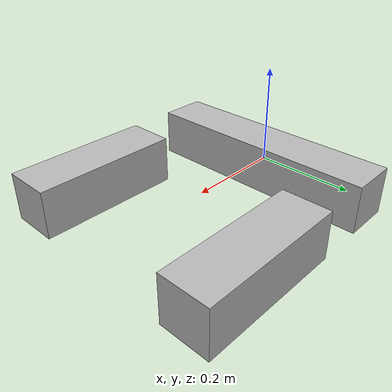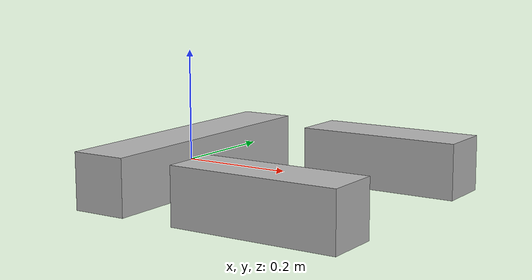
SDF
<?xml version="1.0" ?>
<sdf version="1.4">
    <model name="gripper">
        <link name="palm">
            <gravity>false</gravity>
            <inertial>
                <mass>0.01</mass>
            </inertial>
            <visual name='palm_vis'>
                <geometry>
                    <box>
                        <size>0.1 0.5 0.1</size>
                    </box>
                </geometry>
            </visual>

            <collision name='palm_col'>
                <geometry>
                    <box>
                        <size>0.1 0.5 0.1</size>
                    </box>
                </geometry>
            </collision>
        </link>

        <link name="left_finger">
            <gravity>false</gravity>
            <inertial>
                <mass>1</mass>
            </inertial>

            <pose>0.3 -0.2 0 0 0 0</pose>

            <visual name='left_finger_vis'>
                <geometry>
                    <box>
                        <size>0.3 0.1 0.1</size>
                    </box>
                </geometry>
            </visual>

            <collision name='left_finger_col'>
                <geometry>
                    <box>
                        <size>0.3 0.1 0.1</size>
                    </box>
                </geometry>
            </collision>
        </link>

        <link name="right_finger">
            <gravity>false</gravity>
            <inertial>
                <mass>1</mass>
            </inertial>

            <pose>0.3 0.2 0 0 0 0</pose>

            <visual name='right_finger_vis'>
                <geometry>
                    <box>
                        <size>0.3 0.1 0.1</size>
                    </box>
                </geometry>
            </visual>

            <collision name='right_finger_col'>
                <geometry>
                    <box>
                        <size>0.3 0.1 0.1</size>
                    </box>
                </geometry>
            </collision>
        </link>

        <joint name="l_finger_palm" type="prismatic">
            <child>left_finger</child>
            <parent>palm</parent>
            <axis>
                <limit>
                    <lower>-0.5</lower>
                    <upper>0.5</upper>
                </limit>
                <xyz>1 0 0</xyz>
            </axis>
        </joint>

        <joint name="r_finger_palm" type="prismatic">
            <child>right_finger</child>
            <parent>palm</parent>
            <axis>
                <limit>
                    <lower>-0.5</lower>
                    <upper>0.5</upper>
                </limit>
                <xyz>1 0 0</xyz>
            </axis>
        </joint>

        <gripper name="grasping">
            <gripper_link>right_finger</gripper_link>
            <gripper_link>left_finger</gripper_link>
            <palm_link>palm</palm_link>
        </gripper>
    </model>
</sdf>
